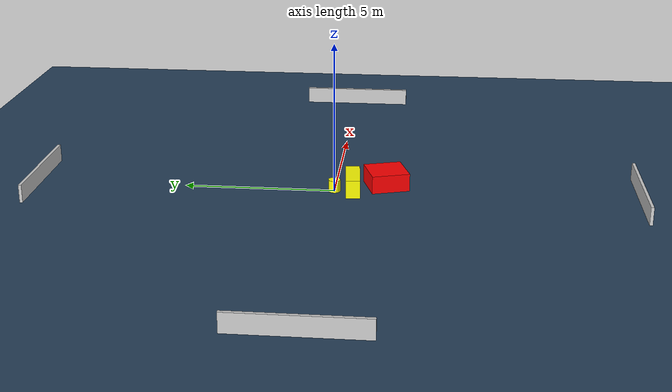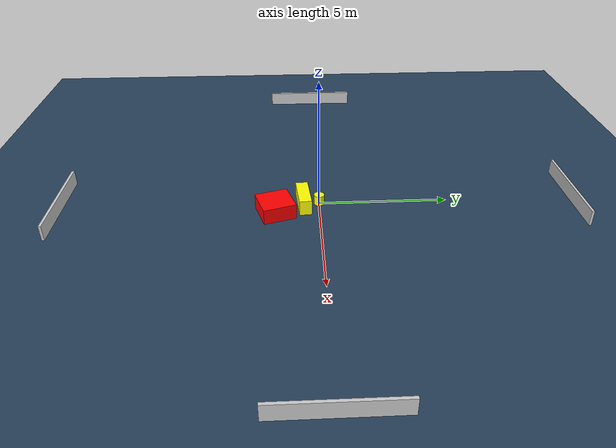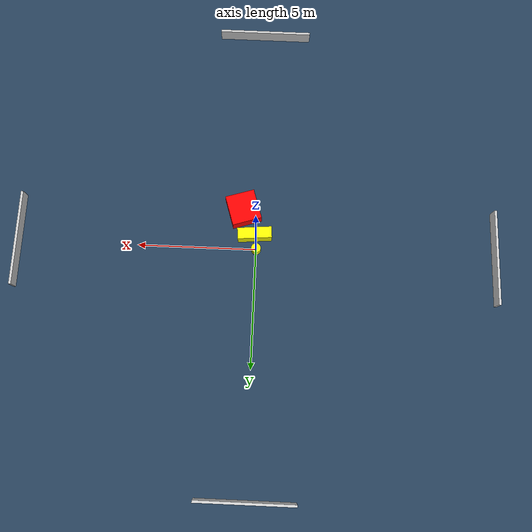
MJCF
<?xml version="1.0" ?>
<mujoco model="generated_environment">
  <option timestep="0.01" integrator="RK4" cone="elliptic"/>
  <default>
    <geom density="1"/>
  </default>
  <asset>
    <texture builtin="gradient" height="3072" name="skybox" rgb1="0.3 0.5 0.7" rgb2="0 0 0" type="skybox" width="512"/>
    <texture builtin="checker" height="300" name="groundplane" rgb1="0.2 0.3 0.4" rgb2="0.1 0.2 0.3" type="2d" width="300"/>
    <material name="groundplane" reflectance="0.2" texrepeat="5 5" texture="groundplane"/>
  </asset>
  <worldbody>
    <light dir="0 0 -1" directional="true" pos="0 0 1.5"/>
    <geom condim="3" friction="0.5 0.005 0.001" material="groundplane" name="floor" pos="0 0 0" size="0 0 0.05" type="plane"/>
    <body name="walls">
      <geom name="wall_1" condim="4" pos="-10.0 0.0 0.3" rgba="0.800000011920929 0.800000011920929 0.800000011920929 1.0" size="0.05 2.0 0.3" type="box"/>
      <geom name="wall_2" condim="4" pos="10.0 0.0 0.3" rgba="0.800000011920929 0.800000011920929 0.800000011920929 1.0" size="0.05 2.0 0.3" type="box"/>
      <geom name="wall_3" condim="4" pos="0.0 -10.0 0.3" rgba="0.800000011920929 0.800000011920929 0.800000011920929 1.0" size="2.0 0.05 0.3" type="box"/>
      <geom name="wall_4" condim="4" pos="0.0 10.0 0.3" rgba="0.800000011920929 0.800000011920929 0.800000011920929 1.0" size="2.0 0.05 0.3" type="box"/>
    </body>
    <body name="robot">
      <joint name="joint_x" type="slide" pos="0 0 0" axis="1 0 0"/>
      <joint name="joint_y" type="slide" pos="0 0 0" axis="0 1 0"/>
      <geom name="robot" type="cylinder" pos="0.0 0.0 0.2" size="0.2 0.2 0.0" mass="5.0" friction="1.0 0.005 0.0001" condim="4" rgba="1.0 1.0 0.0 1.0"/>
    </body>
    <body name="obstacle_1_movable">
      <geom name="obstacle_1_movable" condim="4" pos="0.08536563091137163 -0.6061868260419039 0.3" euler="0 0 4.911242210823756" friction="0.0 0.005 0.001" rgba="1.0 1.0 0.0 1.0" size="0.712053292454081 0.23660195721974825 0.3" type="box" mass="0.1"/>
      <joint type="free"/>
    </body>
    <body name="obstacle_2_static">
      <geom name="obstacle_2_static" condim="4" pos="0.6032203831630688 -1.6919932062576541 0.3" euler="0 0 107.45746159351526" friction="0.0 0.005 0.001" rgba="1.0 0.0 0.0 1.0" size="0.6378371850037585 0.6211736288381756 0.3" type="box"/>
    </body>
  </worldbody>
  <actuator>
    <motor name="actuator_x" joint="joint_x" gear="1" ctrlrange="-1 1"/>
    <motor name="actuator_y" joint="joint_y" gear="1" ctrlrange="-1 1"/>
  </actuator>
</mujoco>
